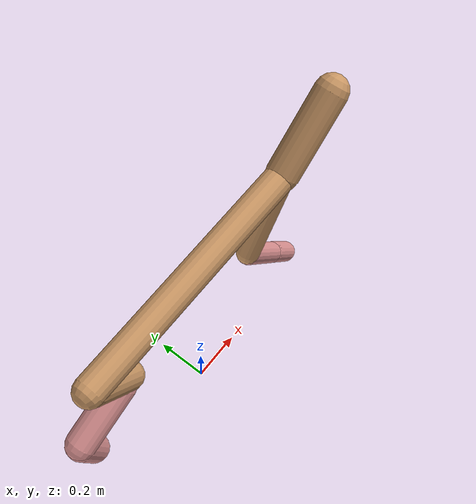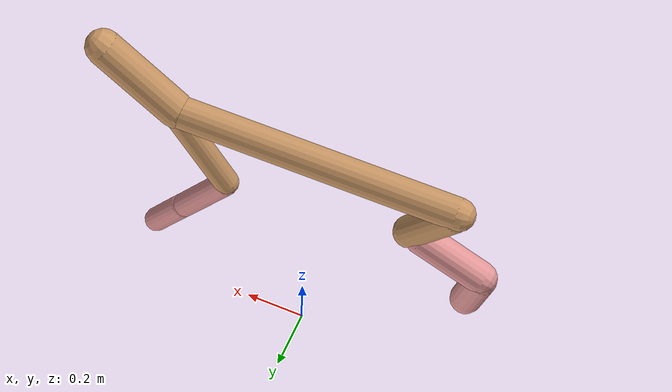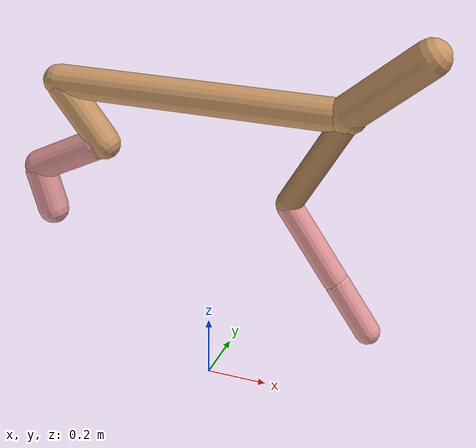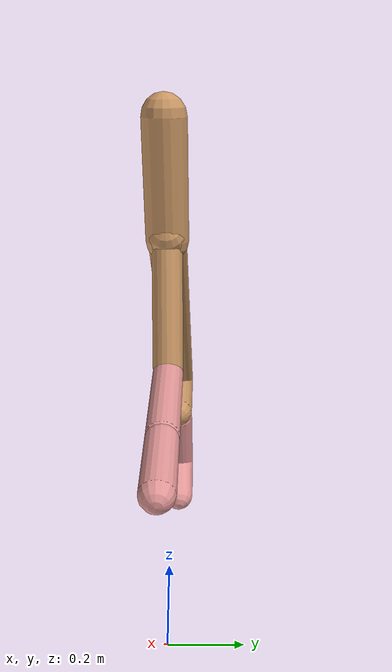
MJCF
<mujoco model="cheetah">
  <compiler angle="radian" coordinate="local" inertiafromgeom="true" settotalmass="14" />
  <default>
    <joint armature=".1" damping=".01" limited="true" solimplimit="0 .8 .03" solreflimit=".02 1" stiffness="8" />
    <geom conaffinity="0" condim="3" contype="1" friction="0.8 .1 .1" rgba="0.8 0.6 .4 1" solimp="0.0 0.8 0.01" solref="0.02 1" />
    <motor ctrllimited="true" ctrlrange="-1 1" />
  </default>
  <size nstack="300000" nuser_geom="1" />
  <option gravity="0 0 -9.81" timestep="0.01" />
  <worldbody>
    <body name="torso" pos="0.0 0.0 0.9721746422076047">
      <joint armature="0" axis="1 0 0" damping="0" limited="false" name="ignorex" pos="0 0 0" stiffness="0" type="slide" />
      <joint armature="0" axis="0 0 1" damping="0" limited="false" name="ignorez" pos="0 0 0" stiffness="0" type="slide" />
      <joint armature="0" axis="0 1 0" damping="0" limited="false" name="ignorey" pos="0 0 0" stiffness="0" type="hinge" />
      <geom fromto="-0.5 0.0 0.0 0.43625308061264434 0.0 0.0" name="torso" size="0.05127928306064936" type="capsule" />
      <geom axisangle="0 1 0 .87" name="head" pos="0.5362530806126443 0.0 0.1" size="0.05716175754336469 0.15" type="capsule" />

      <body name="bthigh" pos="-.5 0 0">
        <joint axis="0 1 0" damping="6" name="bthigh" pos="0 0 0" range="-.52 1.05" stiffness="240" type="hinge" />
        <geom axisangle="0 1 0 -3.8" name="bthigh" pos="0.0796795497231476 0.0 -0.10358341464009188" size="0.05142072872947066 0.1116719835343994" type="capsule" />
        <body name="bshin" pos="0.11935909944629519 0.0 -0.19716682928018375">
          <joint axis="0 1 0" damping="4.5" name="bshin" pos="0 0 0" range="-.785 .785" stiffness="180" type="hinge" />
          <geom axisangle="0 1 0 -2.03" name="bshin" pos="-0.10916260260455926 0.0 -0.05458130130227963" rgba="0.9 0.6 0.6 1" size="0.05142072872947066 0.11552274158730974" type="capsule" />
          <body name="bfoot" pos="-0.21832520520911852 0.0 -0.10916260260455926">
            <joint axis="0 1 0" damping="3" name="bfoot" pos="0 0 0" range="-.4 .785" stiffness="120" type="hinge" />
            <geom axisangle="0 1 0 -.27" name="bfoot" pos="0.023616155446072328 0.0 -0.0763589026089672" rgba="0.9 0.6 0.6 1" size="0.05142072872947066 0.0723942513947141" type="capsule" />
            <inertial mass="10" />
          </body>
        </body>
      </body>
      <body name="fthigh" pos="0.43625308061264434 0.0 0.0">
        <joint axis="0 1 0" damping="4.5" name="fthigh" pos="0 0 0" range="-1.5 0.8" stiffness="180" type="hinge" />
        <geom axisangle="0 1 0 .52" name="fthigh" pos="-0.0890792278661883 0.0 -0.15270724777060848" size="0.04045596453525708 0.17086530064185296" type="capsule" />
        <body name="fshin" pos="-0.1781584557323766 0.0 -0.30541449554121697">
          <joint axis="0 1 0" damping="3" name="fshin" pos="0 0 0" range="-1.2 1.1" stiffness="120" type="hinge" />
          <geom axisangle="0 1 0 -.6" name="fshin" pos="0.08266914465784853 0.0 -0.11446496952625179" rgba="0.9 0.6 0.6 1" size="0.04045596453525708 0.13617835991004823" type="capsule" />
          <body name="ffoot" pos="0.16533828931569705 0.0 -0.22892993905250358">
            <joint axis="0 1 0" damping="1.5" name="ffoot" pos="0 0 0" range="-3.1 -0.3" stiffness="60" type="hinge" />
            <geom axisangle="0 1 0 -.6" name="ffoot" pos="0.055776815141815726 0.0 -0.0867639346650467" rgba="0.9 0.6 0.6 1" size="0.04045596453525708 0.08992910560097525" type="capsule" />
            <inertial mass="10" />
          </body>
        </body>
      </body>
    </body>
  </worldbody>
  <actuator>
    <motor gear="120" joint="bthigh" name="bthigh" />
    <motor gear="90" joint="bshin" name="bshin" />
    <motor gear="60" joint="bfoot" name="bfoot" />
    <motor gear="120" joint="fthigh" name="fthigh" />
    <motor gear="60" joint="fshin" name="fshin" />
    <motor gear="30" joint="ffoot" name="ffoot" />
  </actuator>
</mujoco>
